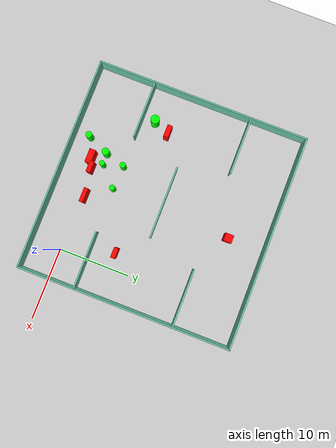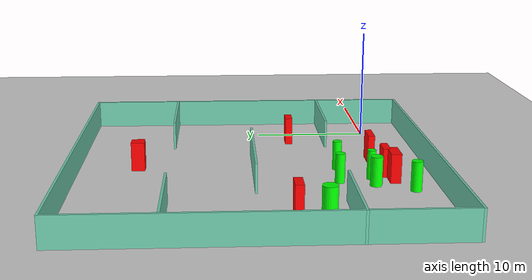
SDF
<sdf version="1.7">
 <world name="default">
  <light name="sun" type="directional">
   <pose>0 0 10 0 -0 0</pose>
   <diffuse>0.8 0.8 0.8 1</diffuse>
   <specular>0.2 0.2 0.2 1</specular>
   <attenuation>
    <range>1000</range>
    <constant>0.9</constant>
    <linear>0.01</linear>
    <quadratic>0.001</quadratic>
   </attenuation>
   <direction>-0.5 0.1 -0.9</direction>
   <spot><inner_angle>0</inner_angle><outer_angle>0</outer_angle><falloff>0</falloff></spot>
  </light>
  <model name="ground_plane">
   <static>1</static>
   <link name="link">
    <collision name="collision">
     <geometry><plane><normal>0 0 1</normal><size>100 100</size></plane></geometry>
     <surface>
      <contact><collide_bitmask>65535</collide_bitmask></contact>
      <friction><ode><mu>100</mu><mu2>50</mu2></ode></friction>
     </surface>
    </collision>
    <visual name="visual">
     <cast_shadows>0</cast_shadows>
     <geometry><plane><normal>0 0 1</normal><size>100 100</size></plane></geometry>
     <material>
      <script><uri>file://media/materials/scripts/gazebo.material</uri><name>Gazebo/Grey</name></script>
     </material>
    </visual>
   </link>
  </model>
  <gravity>0 0 -9.8</gravity>
  <magnetic_field>6e-06 2.3e-05 -4.2e-05</magnetic_field>
  <atmosphere type="adiabatic"/>
  <physics type="ode">
   <max_step_size>0.001</max_step_size>
   <real_time_factor>1</real_time_factor>
   <real_time_update_rate>1000</real_time_update_rate>
  </physics>
  <scene><ambient>0.4 0.4 0.4 1</ambient><background>0.7 0.7 0.7 1</background><shadows>1</shadows></scene>
  <spherical_coordinates>
   <surface_model>EARTH_WGS84</surface_model>
   <latitude_deg>0</latitude_deg>
   <longitude_deg>0</longitude_deg>
   <elevation>0</elevation>
   <heading_deg>0</heading_deg>
  </spherical_coordinates>
  <model name="my_base_walls">
   <link name="Wall_10">
    <collision name="Wall_10_Collision">
     <geometry><box><size>8.2 0.2 2.5</size></box></geometry>
     <pose>0 0 1.25 0 -0 0</pose>
    </collision>
    <visual name="Wall_10_Visual">
     <pose>0 0 1.25 0 -0 0</pose>
     <geometry><box><size>8.2 0.2 2.5</size></box></geometry>
     <material>
      <script><uri>file://media/materials/scripts/gazebo.material</uri><name>Gazebo/Grey</name></script>
      <ambient>0.435294 0.796078 0.67451 1</ambient>
     </material>
     <meta><layer>0</layer></meta>
    </visual>
    <pose>-11 -7 0 0 -0 0</pose>
   </link>
   <link name="Wall_12">
    <collision name="Wall_12_Collision">
     <geometry><box><size>8.2 0.2 2.5</size></box></geometry>
     <pose>0 0 1.25 0 -0 0</pose>
    </collision>
    <visual name="Wall_12_Visual">
     <pose>0 0 1.25 0 -0 0</pose>
     <geometry><box><size>8.2 0.2 2.5</size></box></geometry>
     <material>
      <script><uri>file://media/materials/scripts/gazebo.material</uri><name>Gazebo/Grey</name></script>
      <ambient>0.435294 0.796078 0.67451 1</ambient>
     </material>
     <meta><layer>0</layer></meta>
    </visual>
    <pose>-11 7 0 0 -0 0</pose>
   </link>
   <link name="Wall_14">
    <collision name="Wall_14_Collision">
     <geometry><box><size>8.2 0.2 2.5</size></box></geometry>
     <pose>0 0 1.25 0 -0 0</pose>
    </collision>
    <visual name="Wall_14_Visual">
     <pose>0 0 1.25 0 -0 0</pose>
     <geometry><box><size>8.2 0.2 2.5</size></box></geometry>
     <material>
      <script><uri>file://media/materials/scripts/gazebo.material</uri><name>Gazebo/Grey</name></script>
      <ambient>0.435294 0.796078 0.67451 1</ambient>
     </material>
     <meta><layer>0</layer></meta>
    </visual>
    <pose>11 7 0 0 -0 3.14159</pose>
   </link>
   <link name="Wall_16">
    <collision name="Wall_16_Collision">
     <geometry><box><size>10.2 0.2 2.5</size></box></geometry>
     <pose>0 0 1.25 0 -0 0</pose>
    </collision>
    <visual name="Wall_16_Visual">
     <pose>0 0 1.25 0 -0 0</pose>
     <geometry><box><size>10.2 0.2 2.5</size></box></geometry>
     <material>
      <script><uri>file://media/materials/scripts/gazebo.material</uri><name>Gazebo/Grey</name></script>
      <ambient>0.435294 0.796078 0.67451 1</ambient>
     </material>
     <meta><layer>0</layer></meta>
    </visual>
    <pose>0 0 0 0 -0 3.14159</pose>
   </link>
   <link name="Wall_2">
    <collision name="Wall_2_Collision">
     <geometry><box><size>30.2 0.2 2.5</size></box></geometry>
     <pose>0 0 1.25 0 -0 0</pose>
    </collision>
    <visual name="Wall_2_Visual">
     <pose>0 0 1.25 0 -0 0</pose>
     <geometry><box><size>30.2 0.2 2.5</size></box></geometry>
     <material>
      <script><uri>file://media/materials/scripts/gazebo.material</uri><name>Gazebo/Grey</name></script>
      <ambient>0.435294 0.796078 0.67451 1</ambient>
     </material>
     <meta><layer>0</layer></meta>
    </visual>
    <pose>0 -15 0 0 -0 3.14159</pose>
   </link>
   <link name="Wall_3">
    <collision name="Wall_3_Collision">
     <geometry><box><size>30.2 0.2 2.5</size></box></geometry>
     <pose>0 0 1.25 0 -0 0</pose>
    </collision>
    <visual name="Wall_3_Visual">
     <pose>0 0 1.25 0 -0 0</pose>
     <geometry><box><size>30.2 0.2 2.5</size></box></geometry>
     <material>
      <script><uri>file://media/materials/scripts/gazebo.material</uri><name>Gazebo/Grey</name></script>
      <ambient>0.435294 0.796078 0.67451 1</ambient>
     </material>
     <meta><layer>0</layer></meta>
    </visual>
    <pose>-15 0 0 0 -0 1.5708</pose>
   </link>
   <link name="Wall_4">
    <collision name="Wall_4_Collision">
     <geometry><box><size>30.2 0.2 2.5</size></box></geometry>
     <pose>0 0 1.25 0 -0 0</pose>
    </collision>
    <visual name="Wall_4_Visual">
     <pose>0 0 1.25 0 -0 0</pose>
     <geometry><box><size>30.2 0.2 2.5</size></box></geometry>
     <material>
      <script><uri>file://media/materials/scripts/gazebo.material</uri><name>Gazebo/Grey</name></script>
      <ambient>0.435294 0.796078 0.67451 1</ambient>
     </material>
     <meta><layer>0</layer></meta>
    </visual>
    <pose>0 15 0 0 -0 0</pose>
   </link>
   <link name="Wall_6">
    <collision name="Wall_6_Collision">
     <geometry><box><size>30.2 0.2 2.5</size></box></geometry>
     <pose>0 0 1.25 0 -0 0</pose>
    </collision>
    <visual name="Wall_6_Visual">
     <pose>0 0 1.25 0 -0 0</pose>
     <geometry><box><size>30.2 0.2 2.5</size></box></geometry>
     <material>
      <script><uri>file://media/materials/scripts/gazebo.material</uri><name>Gazebo/Grey</name></script>
      <ambient>0.435294 0.796078 0.67451 1</ambient>
     </material>
     <meta><layer>0</layer></meta>
    </visual>
    <pose>15 0 0 0 -0 1.5708</pose>
   </link>
   <link name="Wall_8">
    <collision name="Wall_8_Collision">
     <geometry><box><size>8.2 0.2 2.5</size></box></geometry>
     <pose>0 0 1.25 0 -0 0</pose>
    </collision>
    <visual name="Wall_8_Visual">
     <pose>0 0 1.25 0 -0 0</pose>
     <geometry><box><size>8.2 0.2 2.5</size></box></geometry>
     <material>
      <script><uri>file://media/materials/scripts/gazebo.material</uri><name>Gazebo/Grey</name></script>
      <ambient>0.435294 0.796078 0.67451 1</ambient>
     </material>
     <meta><layer>0</layer></meta>
    </visual>
    <pose>11 -7 0 0 -0 3.14159</pose>
   </link>
   <static>1</static>
   <pose>-11 11 0 0 -0 0</pose>
  </model>
  <model name="cylinder1">
   <static>1</static>
   <link name="link">
    <inertial>
     <mass>1</mass>
     <inertia><ixx>0.5</ixx><ixy>0</ixy><ixz>0</ixz><iyy>0.5</iyy><iyz>0</iyz><izz>1</izz></inertia>
    </inertial>
    <collision name="collision">
     <geometry><cylinder><radius>0.36309700267451395</radius><length>2.5</length></cylinder></geometry>
    </collision>
    <visual name="visual">
     <geometry><cylinder><radius>0.36309700267451395</radius><length>2.5</length></cylinder></geometry>
     <material>
      <ambient>0 1 0 1</ambient>
      <diffuse>0 1 0 1</diffuse>
      <specular>0.1 0.1 0.1 1</specular>
      <emissive>0 0 0 0</emissive>
     </material>
    </visual>
   </link>
   <pose>-12.972722818370794 1.3128661194892661 1.25 0 0 0</pose>
  </model>
  <model name="cylinder2">
   <static>1</static>
   <link name="link">
    <inertial>
     <mass>1</mass>
     <inertia><ixx>0.5</ixx><ixy>0</ixy><ixz>0</ixz><iyy>0.5</iyy><iyz>0</iyz><izz>1</izz></inertia>
    </inertial>
    <collision name="collision">
     <geometry><cylinder><radius>0.3814208908647262</radius><length>2.5</length></cylinder></geometry>
    </collision>
    <visual name="visual">
     <geometry><cylinder><radius>0.3814208908647262</radius><length>2.5</length></cylinder></geometry>
     <material>
      <ambient>0 1 0 1</ambient>
      <diffuse>0 1 0 1</diffuse>
      <specular>0.1 0.1 0.1 1</specular>
      <emissive>0 0 0 0</emissive>
     </material>
    </visual>
   </link>
   <pose>-10.35783574131496 3.8133196351699237 1.25 0 0 0</pose>
  </model>
  <model name="cylinder3">
   <static>1</static>
   <link name="link">
    <inertial>
     <mass>1</mass>
     <inertia><ixx>0.5</ixx><ixy>0</ixy><ixz>0</ixz><iyy>0.5</iyy><iyz>0</iyz><izz>1</izz></inertia>
    </inertial>
    <collision name="collision">
     <geometry><cylinder><radius>0.5032652249951033</radius><length>2.5</length></cylinder></geometry>
    </collision>
    <visual name="visual">
     <geometry><cylinder><radius>0.5032652249951033</radius><length>2.5</length></cylinder></geometry>
     <material>
      <ambient>0 1 0 1</ambient>
      <diffuse>0 1 0 1</diffuse>
      <specular>0.1 0.1 0.1 1</specular>
      <emissive>0 0 0 0</emissive>
     </material>
    </visual>
   </link>
   <pose>-14.612553199141404 1.1881127849502313 1.25 0 0 0</pose>
  </model>
  <model name="cylinder4">
   <static>1</static>
   <link name="link">
    <inertial>
     <mass>1</mass>
     <inertia><ixx>0.5</ixx><ixy>0</ixy><ixz>0</ixz><iyy>0.5</iyy><iyz>0</iyz><izz>1</izz></inertia>
    </inertial>
    <collision name="collision">
     <geometry><cylinder><radius>0.45173070890169015</radius><length>2.5</length></cylinder></geometry>
    </collision>
    <visual name="visual">
     <geometry><cylinder><radius>0.45173070890169015</radius><length>2.5</length></cylinder></geometry>
     <material>
      <ambient>0 1 0 1</ambient>
      <diffuse>0 1 0 1</diffuse>
      <specular>0.1 0.1 0.1 1</specular>
      <emissive>0 0 0 0</emissive>
     </material>
    </visual>
   </link>
   <pose>-15.965593761874851 -1.7844634352744713 1.25 0 0 0</pose>
  </model>
  <model name="cylinder5">
   <static>1</static>
   <link name="link">
    <inertial>
     <mass>1</mass>
     <inertia><ixx>0.5</ixx><ixy>0</ixy><ixz>0</ixz><iyy>0.5</iyy><iyz>0</iyz><izz>1</izz></inertia>
    </inertial>
    <collision name="collision">
     <geometry><cylinder><radius>0.41042690023732514</radius><length>2.5</length></cylinder></geometry>
    </collision>
    <visual name="visual">
     <geometry><cylinder><radius>0.41042690023732514</radius><length>2.5</length></cylinder></geometry>
     <material>
      <ambient>0 1 0 1</ambient>
      <diffuse>0 1 0 1</diffuse>
      <specular>0.1 0.1 0.1 1</specular>
      <emissive>0 0 0 0</emissive>
     </material>
    </visual>
   </link>
   <pose>-13.73231426489843 4.029830298550914 1.25 0 0 0</pose>
  </model>
  <model name="cylinder6">
   <static>1</static>
   <link name="link">
    <inertial>
     <mass>1</mass>
     <inertia><ixx>0.5</ixx><ixy>0</ixy><ixz>0</ixz><iyy>0.5</iyy><iyz>0</iyz><izz>1</izz></inertia>
    </inertial>
    <collision name="collision">
     <geometry><cylinder><radius>0.612426654446611</radius><length>2.5</length></cylinder></geometry>
    </collision>
    <visual name="visual">
     <geometry><cylinder><radius>0.612426654446611</radius><length>2.5</length></cylinder></geometry>
     <material>
      <ambient>0 1 0 1</ambient>
      <diffuse>0 1 0 1</diffuse>
      <specular>0.1 0.1 0.1 1</specular>
      <emissive>0 0 0 0</emissive>
     </material>
    </visual>
   </link>
   <pose>-21.147714984389694 5.8360448514961725 1.25 0 0 0</pose>
  </model>
  <model name="box1">
   <static>1</static>
   <link name="link">
    <inertial>
     <mass>1</mass>
     <inertia><ixx>0.083</ixx><ixy>0</ixy><ixz>0</ixz><iyy>0.083</iyy><iyz>0</iyz><izz>0.083</izz></inertia>
    </inertial>
    <collision name="collision">
     <geometry><box><size>1.560506793941327 0.6227293565320635 2.5</size></box></geometry>
    </collision>
    <visual name="visual">
     <geometry><box><size>1.560506793941327 0.6227293565320635 2.5</size></box></geometry>
     <material>
      <ambient>1 0 0 1</ambient>
      <diffuse>1 0 0 1</diffuse>
      <specular>0.1 0.1 0.1 1</specular>
      <emissive>0 0 0 0</emissive>
     </material>
    </visual>
    <sensor name="my_contact" type="contact">
     <contact><collision>box_collision</collision><topic>__default_topic__</topic></contact>
    </sensor>
   </link>
   <pose>-11.973898403184062 -0.003753450379702983 1.25 0 0 0</pose>
  </model>
  <model name="box2">
   <static>1</static>
   <link name="link">
    <inertial>
     <mass>1</mass>
     <inertia><ixx>0.083</ixx><ixy>0</ixy><ixz>0</ixz><iyy>0.083</iyy><iyz>0</iyz><izz>0.083</izz></inertia>
    </inertial>
    <collision name="collision">
     <geometry><box><size>1.4783644039038282 0.6338369101414455 2.5</size></box></geometry>
    </collision>
    <visual name="visual">
     <geometry><box><size>1.4783644039038282 0.6338369101414455 2.5</size></box></geometry>
     <material>
      <ambient>1 0 0 1</ambient>
      <diffuse>1 0 0 1</diffuse>
      <specular>0.1 0.1 0.1 1</specular>
      <emissive>0 0 0 0</emissive>
     </material>
    </visual>
    <sensor name="my_contact" type="contact">
     <contact><collision>box_collision</collision><topic>__default_topic__</topic></contact>
    </sensor>
   </link>
   <pose>-2.3561460073144858 7.336535115251047 1.25 0 0 0</pose>
  </model>
  <model name="box3">
   <static>1</static>
   <link name="link">
    <inertial>
     <mass>1</mass>
     <inertia><ixx>0.083</ixx><ixy>0</ixy><ixz>0</ixz><iyy>0.083</iyy><iyz>0</iyz><izz>0.083</izz></inertia>
    </inertial>
    <collision name="collision">
     <geometry><box><size>1.6942636465518772 0.7002502604498579 2.5</size></box></geometry>
    </collision>
    <visual name="visual">
     <geometry><box><size>1.6942636465518772 0.7002502604498579 2.5</size></box></geometry>
     <material>
      <ambient>1 0 0 1</ambient>
      <diffuse>1 0 0 1</diffuse>
      <specular>0.1 0.1 0.1 1</specular>
      <emissive>0 0 0 0</emissive>
     </material>
    </visual>
    <sensor name="my_contact" type="contact">
     <contact><collision>box_collision</collision><topic>__default_topic__</topic></contact>
    </sensor>
   </link>
   <pose>-20.25444659314513 8.057361133299631 1.25 0 0 0</pose>
  </model>
  <model name="box4">
   <static>1</static>
   <link name="link">
    <inertial>
     <mass>1</mass>
     <inertia><ixx>0.083</ixx><ixy>0</ixy><ixz>0</ixz><iyy>0.083</iyy><iyz>0</iyz><izz>0.083</izz></inertia>
    </inertial>
    <collision name="collision">
     <geometry><box><size>1.9872813826614997 0.5704368040388615 2.5</size></box></geometry>
    </collision>
    <visual name="visual">
     <geometry><box><size>1.9872813826614997 0.5704368040388615 2.5</size></box></geometry>
     <material>
      <ambient>1 0 0 1</ambient>
      <diffuse>1 0 0 1</diffuse>
      <specular>0.1 0.1 0.1 1</specular>
      <emissive>0 0 0 0</emissive>
     </material>
    </visual>
    <sensor name="my_contact" type="contact">
     <contact><collision>box_collision</collision><topic>__default_topic__</topic></contact>
    </sensor>
   </link>
   <pose>-8.08141863311062 0.6067407935957005 1.25 0 0 0</pose>
  </model>
  <model name="box5">
   <static>1</static>
   <link name="link">
    <inertial>
     <mass>1</mass>
     <inertia><ixx>0.083</ixx><ixy>0</ixy><ixz>0</ixz><iyy>0.083</iyy><iyz>0</iyz><izz>0.083</izz></inertia>
    </inertial>
    <collision name="collision">
     <geometry><box><size>1.923402702435363 0.8628542587877925 2.5</size></box></geometry>
    </collision>
    <visual name="visual">
     <geometry><box><size>1.923402702435363 0.8628542587877925 2.5</size></box></geometry>
     <material>
      <ambient>1 0 0 1</ambient>
      <diffuse>1 0 0 1</diffuse>
      <specular>0.1 0.1 0.1 1</specular>
      <emissive>0 0 0 0</emissive>
     </material>
    </visual>
    <sensor name="my_contact" type="contact">
     <contact><collision>box_collision</collision><topic>__default_topic__</topic></contact>
    </sensor>
   </link>
   <pose>-13.303678734607907 -0.5066053864808313 1.25 0 0 0</pose>
  </model>
  <model name="box6">
   <static>1</static>
   <link name="link">
    <inertial>
     <mass>1</mass>
     <inertia><ixx>0.083</ixx><ixy>0</ixy><ixz>0</ixz><iyy>0.083</iyy><iyz>0</iyz><izz>0.083</izz></inertia>
    </inertial>
    <collision name="collision">
     <geometry><box><size>1.0961054171646094 1.1340036487824743 2.5</size></box></geometry>
    </collision>
    <visual name="visual">
     <geometry><box><size>1.0961054171646094 1.1340036487824743 2.5</size></box></geometry>
     <material>
      <ambient>1 0 0 1</ambient>
      <diffuse>1 0 0 1</diffuse>
      <specular>0.1 0.1 0.1 1</specular>
      <emissive>0 0 0 0</emissive>
     </material>
    </visual>
    <sensor name="my_contact" type="contact">
     <contact><collision>box_collision</collision><topic>__default_topic__</topic></contact>
    </sensor>
   </link>
   <pose>-9.673604979995162 20.821801157692228 1.25 0 0 0</pose>
  </model>
 </world>
</sdf>
